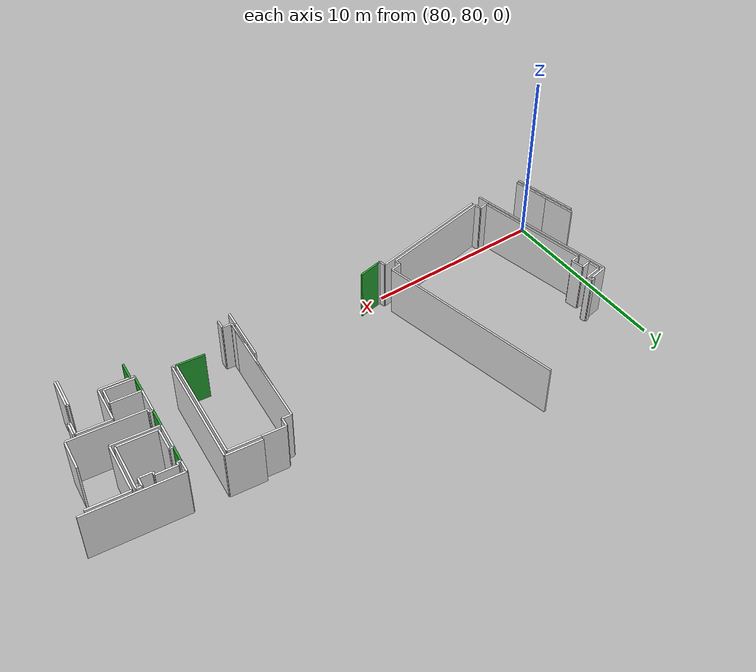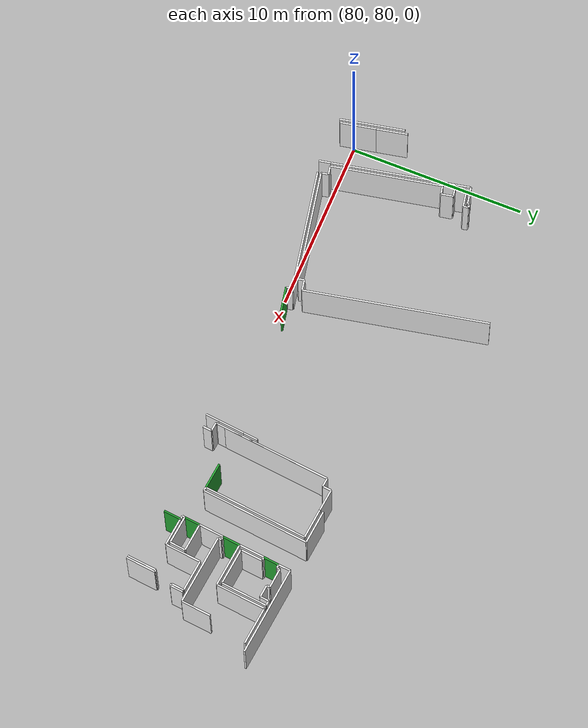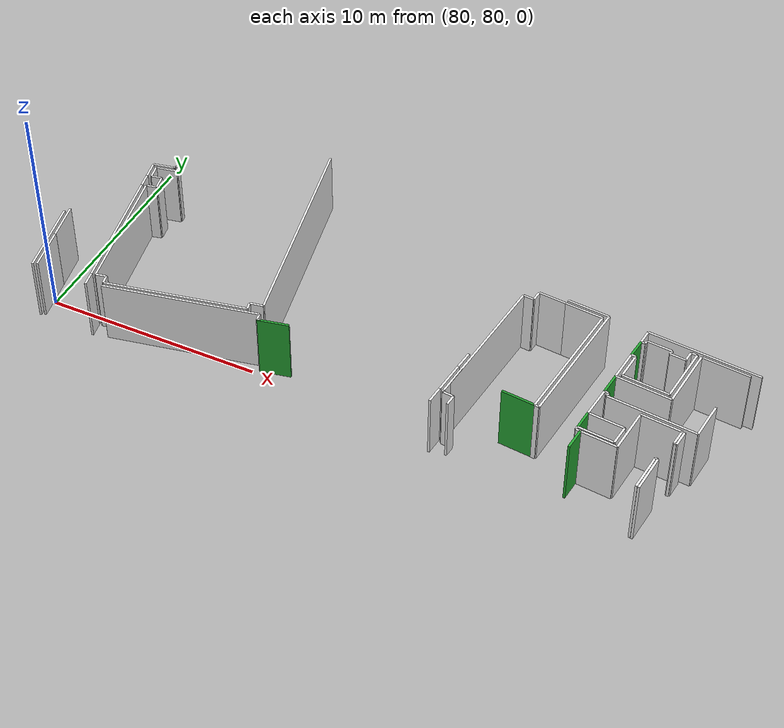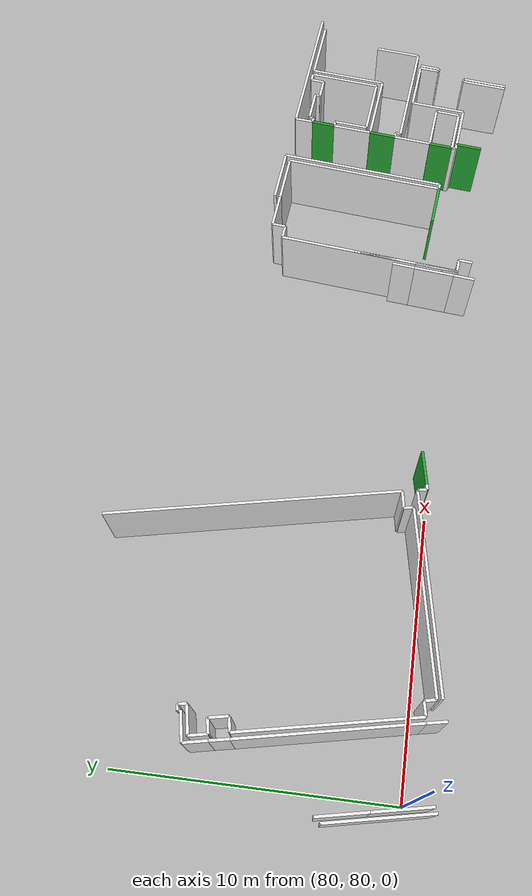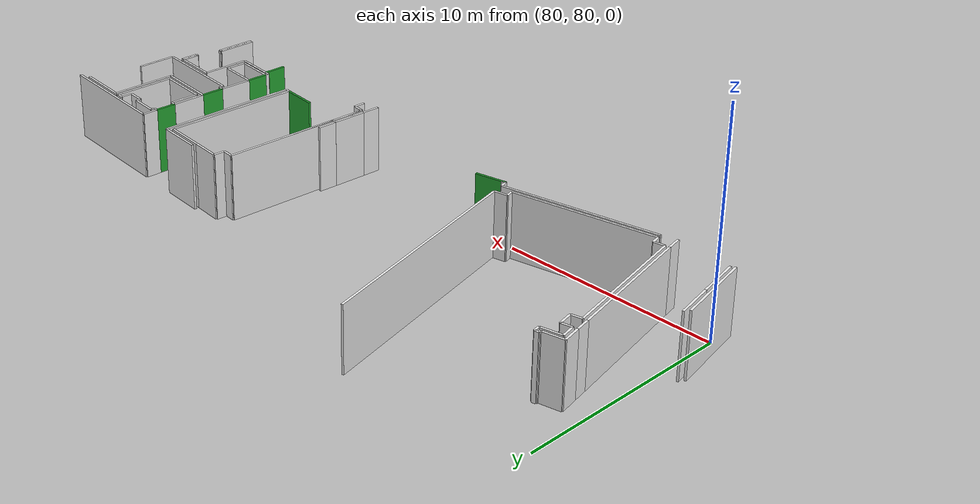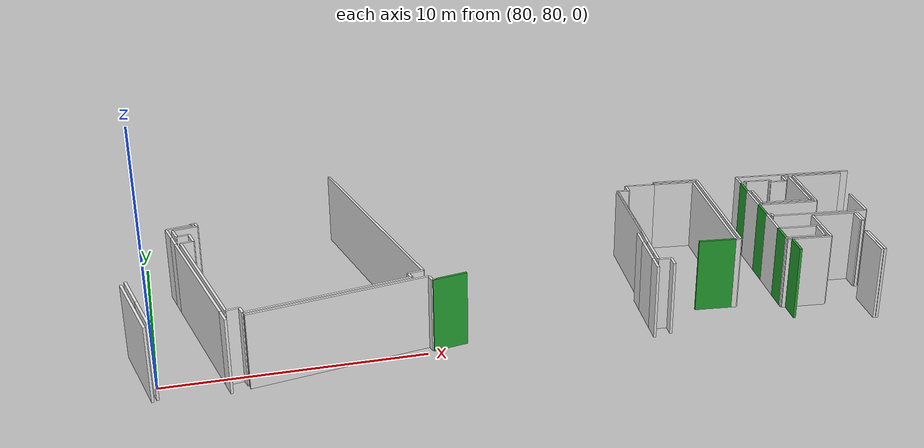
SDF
<sdf version="1.6">
 <world name="default">
  <model name="wall_104.7_79.7_1.5">
   <static>true</static>
   <pose>104.70999999999185 79.65999999991618 1.5 0 0 -1.6724851785951633</pose>
   <link name="link">
    <visual name="visual">
     <geometry><box><size>0.9850888284669952 0.1 3</size></box></geometry>
     <material>
      <script><uri>file://media/materials/scripts/gazebo.material</uri><name>Gazebo/Green</name></script>
     </material>
    </visual>
    <collision name="collision"><geometry><box><size>0.9850888284669952 0.1 3</size></box></geometry></collision>
   </link>
  </model>
  <model name="wall_104.9_83.1_1.5">
   <static>true</static>
   <pose>104.86999999999534 83.12999999988824 1.5 0 0 1.4711276743267871</pose>
   <link name="link">
    <visual name="visual">
     <geometry><box><size>1.0049875621097721 0.1 3</size></box></geometry>
     <material>
      <script><uri>file://media/materials/scripts/gazebo.material</uri><name>Gazebo/Green</name></script>
     </material>
    </visual>
    <collision name="collision"><geometry><box><size>1.0049875621097721 0.1 3</size></box></geometry></collision>
   </link>
  </model>
  <model name="wall_105.1_85.5_1.5">
   <static>true</static>
   <pose>105.10999999998603 85.53499999991618 1.5 0 0 1.4589060606653106</pose>
   <link name="link">
    <visual name="visual">
     <geometry><box><size>0.895600357429266 0.1 3</size></box></geometry>
     <material>
      <script><uri>file://media/materials/scripts/gazebo.material</uri><name>Gazebo/Green</name></script>
     </material>
    </visual>
    <collision name="collision"><geometry><box><size>0.895600357429266 0.1 3</size></box></geometry></collision>
   </link>
  </model>
  <model name="wall_101.9_80.8_1.5">
   <static>true</static>
   <pose>101.85499999986496 80.7750000001397 1.5 0 0 3.0412595494460013</pose>
   <link name="link">
    <visual name="visual">
     <geometry><box><size>1.4975313020562016 0.1 3</size></box></geometry>
     <material>
      <script><uri>file://media/materials/scripts/gazebo.material</uri><name>Gazebo/Green</name></script>
     </material>
    </visual>
    <collision name="collision"><geometry><box><size>1.4975313020562016 0.1 3</size></box></geometry></collision>
   </link>
  </model>
  <model name="wall_104.6_80.8_1.5">
   <static>true</static>
   <pose>104.625 80.77000000001863 1.5 0 0 -1.6704649792092168</pose>
   <link name="link">
    <visual name="visual">
     <geometry><box><size>0.904488806268317 0.1 3</size></box></geometry>
     <material>
      <script><uri>file://media/materials/scripts/gazebo.material</uri><name>Gazebo/Green</name></script>
     </material>
    </visual>
    <collision name="collision"><geometry><box><size>0.904488806268317 0.1 3</size></box></geometry></collision>
   </link>
  </model>
  <model name="wall_91.0_80.3_1.5">
   <static>true</static>
   <pose>90.9550000000745 80.3499999998603 1.5 0 0 0.2016031084932804</pose>
   <link name="link">
    <visual name="visual">
     <geometry><box><size>1.398320421145125 0.1 3</size></box></geometry>
     <material>
      <script><uri>file://media/materials/scripts/gazebo.material</uri><name>Gazebo/Green</name></script>
     </material>
    </visual>
    <collision name="collision"><geometry><box><size>1.398320421145125 0.1 3</size></box></geometry></collision>
   </link>
  </model>
  <model name="wall_108.4_81.5_1.5">
   <static>true</static>
   <pose>108.42999999999302 81.48999999999069 1.5 0 0 -1.6784861976067038</pose>
   <link name="link">
    <visual name="visual">
     <geometry><box><size>0.7443117623918901 0.1 3</size></box></geometry>
     <material>
      <script><uri>file://media/materials/scripts/gazebo.material</uri><name>Gazebo/White</name></script>
     </material>
    </visual>
    <collision name="collision"><geometry><box><size>0.7443117623918901 0.1 3</size></box></geometry></collision>
   </link>
  </model>
  <model name="wall_108.3_81.1_1.5">
   <static>true</static>
   <pose>108.33500000002095 81.125 1.5 0 0 3.0509327683929186</pose>
   <link name="link">
    <visual name="visual">
     <geometry><box><size>0.11045361013772383 0.1 3</size></box></geometry>
     <material>
      <script><uri>file://media/materials/scripts/gazebo.material</uri><name>Gazebo/White</name></script>
     </material>
    </visual>
    <collision name="collision"><geometry><box><size>0.11045361013772383 0.1 3</size></box></geometry></collision>
   </link>
  </model>
  <model name="wall_108.3_81.5_1.5">
   <static>true</static>
   <pose>108.32000000000698 81.5 1.5 0 0 1.463106456050333</pose>
   <link name="link">
    <visual name="visual">
     <geometry><box><size>0.7443117628548539 0.1 3</size></box></geometry>
     <material>
      <script><uri>file://media/materials/scripts/gazebo.material</uri><name>Gazebo/White</name></script>
     </material>
    </visual>
    <collision name="collision"><geometry><box><size>0.7443117628548539 0.1 3</size></box></geometry></collision>
   </link>
  </model>
  <model name="wall_107.5_82.0_1.5">
   <static>true</static>
   <pose>107.46499999999651 81.95999999996275 1.5 0 0 3.04137090397356</pose>
   <link name="link">
    <visual name="visual">
     <geometry><box><size>1.7990275150251853 0.1 3</size></box></geometry>
     <material>
      <script><uri>file://media/materials/scripts/gazebo.material</uri><name>Gazebo/White</name></script>
     </material>
    </visual>
    <collision name="collision"><geometry><box><size>1.7990275150251853 0.1 3</size></box></geometry></collision>
   </link>
  </model>
  <model name="wall_106.5_81.0_1.5">
   <static>true</static>
   <pose>106.46499999999651 81.02000000001863 1.5 0 0 -1.672387129760109</pose>
   <link name="link">
    <visual name="visual">
     <geometry><box><size>2.070676217644975 0.1 3</size></box></geometry>
     <material>
      <script><uri>file://media/materials/scripts/gazebo.material</uri><name>Gazebo/White</name></script>
     </material>
    </visual>
    <collision name="collision"><geometry><box><size>2.070676217644975 0.1 3</size></box></geometry></collision>
   </link>
  </model>
  <model name="wall_105.6_80.1_1.5">
   <static>true</static>
   <pose>105.55999999999767 80.07000000006519 1.5 0 0 3.041924001293137</pose>
   <link name="link">
    <visual name="visual">
     <geometry><box><size>1.6079800993246671 0.1 3</size></box></geometry>
     <material>
      <script><uri>file://media/materials/scripts/gazebo.material</uri><name>Gazebo/White</name></script>
     </material>
    </visual>
    <collision name="collision"><geometry><box><size>1.6079800993246671 0.1 3</size></box></geometry></collision>
   </link>
  </model>
  <model name="wall_107.8_79.2_1.5">
   <static>true</static>
   <pose>107.80499999999302 79.2249999998603 1.5 0 0 1.4705418512614783</pose>
   <link name="link">
    <visual name="visual">
     <geometry><box><size>1.6985287750948987 0.1 3</size></box></geometry>
     <material>
      <script><uri>file://media/materials/scripts/gazebo.material</uri><name>Gazebo/White</name></script>
     </material>
    </visual>
    <collision name="collision"><geometry><box><size>1.6985287750948987 0.1 3</size></box></geometry></collision>
   </link>
  </model>
  <model name="wall_107.9_80.1_1.5">
   <static>true</static>
   <pose>107.94500000000698 80.06499999994412 1.5 0 0 -0.09065988519687482</pose>
   <link name="link">
    <visual name="visual">
     <geometry><box><size>0.11045361013772383 0.1 3</size></box></geometry>
     <material>
      <script><uri>file://media/materials/scripts/gazebo.material</uri><name>Gazebo/White</name></script>
     </material>
    </visual>
    <collision name="collision"><geometry><box><size>0.11045361013772383 0.1 3</size></box></geometry></collision>
   </link>
  </model>
  <model name="wall_107.9_79.2_1.5">
   <static>true</static>
   <pose>107.91500000000815 79.20999999996275 1.5 0 0 -1.6704649792657182</pose>
   <link name="link">
    <visual name="visual">
     <geometry><box><size>1.7084788557742698 0.1 3</size></box></geometry>
     <material>
      <script><uri>file://media/materials/scripts/gazebo.material</uri><name>Gazebo/White</name></script>
     </material>
    </visual>
    <collision name="collision"><geometry><box><size>1.7084788557742698 0.1 3</size></box></geometry></collision>
   </link>
  </model>
  <model name="wall_108.8_86.1_1.5">
   <static>true</static>
   <pose>108.77499999999418 86.10000000009313 1.5 0 0 -0.10103726465713746</pose>
   <link name="link">
    <visual name="visual">
     <geometry><box><size>2.18112356362828 0.1 3</size></box></geometry>
     <material>
      <script><uri>file://media/materials/scripts/gazebo.material</uri><name>Gazebo/White</name></script>
     </material>
    </visual>
    <collision name="collision"><geometry><box><size>2.18112356362828 0.1 3</size></box></geometry></collision>
   </link>
  </model>
  <model name="wall_109.0_82.9_1.5">
   <static>true</static>
   <pose>109.0450000000128 82.86499999999069 1.5 0 0 -1.6710508022942177</pose>
   <link name="link">
    <visual name="visual">
     <geometry><box><size>1.698528775089073 0.1 3</size></box></geometry>
     <material>
      <script><uri>file://media/materials/scripts/gazebo.material</uri><name>Gazebo/White</name></script>
     </material>
    </visual>
    <collision name="collision"><geometry><box><size>1.698528775089073 0.1 3</size></box></geometry></collision>
   </link>
  </model>
  <model name="wall_107.0_82.2_1.5">
   <static>true</static>
   <pose>106.97500000000582 82.21999999997206 1.5 0 0 3.04117587158638</pose>
   <link name="link">
    <visual name="visual">
     <geometry><box><size>3.990100249387955 0.1 3</size></box></geometry>
     <material>
      <script><uri>file://media/materials/scripts/gazebo.material</uri><name>Gazebo/White</name></script>
     </material>
    </visual>
    <collision name="collision"><geometry><box><size>3.990100249387955 0.1 3</size></box></geometry></collision>
   </link>
  </model>
  <model name="wall_105.0_82.5_1.5">
   <static>true</static>
   <pose>105.0 82.51499999989755 1.5 0 0 1.4659193879370842</pose>
   <link name="link">
    <visual name="visual">
     <geometry><box><size>0.19104973169180559 0.1 3</size></box></geometry>
     <material>
      <script><uri>file://media/materials/scripts/gazebo.material</uri><name>Gazebo/White</name></script>
     </material>
    </visual>
    <collision name="collision"><geometry><box><size>0.19104973169180559 0.1 3</size></box></geometry></collision>
   </link>
  </model>
  <model name="wall_104.9_82.6_1.5">
   <static>true</static>
   <pose>104.91500000000815 82.61999999987893 1.5 0 0 3.0367157147638757</pose>
   <link name="link">
    <visual name="visual">
     <geometry><box><size>0.19104973174969345 0.1 3</size></box></geometry>
     <material>
      <script><uri>file://media/materials/scripts/gazebo.material</uri><name>Gazebo/White</name></script>
     </material>
    </visual>
    <collision name="collision"><geometry><box><size>0.19104973174969345 0.1 3</size></box></geometry></collision>
   </link>
  </model>
  <model name="wall_106.2_83.5_1.5">
   <static>true</static>
   <pose>106.16499999997905 83.5 1.5 0 0 -0.1040406436245778</pose>
   <link name="link">
    <visual name="visual">
     <geometry><box><size>2.5035374971902042 0.1 3</size></box></geometry>
     <material>
      <script><uri>file://media/materials/scripts/gazebo.material</uri><name>Gazebo/White</name></script>
     </material>
    </visual>
    <collision name="collision"><geometry><box><size>2.5035374971902042 0.1 3</size></box></geometry></collision>
   </link>
  </model>
  <model name="wall_107.5_84.8_1.5">
   <static>true</static>
   <pose>107.54999999998836 84.79000000003725 1.5 0 0 1.4725223735240212</pose>
   <link name="link">
    <visual name="visual">
     <geometry><box><size>2.853769436932364 0.1 3</size></box></geometry>
     <material>
      <script><uri>file://media/materials/scripts/gazebo.material</uri><name>Gazebo/White</name></script>
     </material>
    </visual>
    <collision name="collision"><geometry><box><size>2.853769436932364 0.1 3</size></box></geometry></collision>
   </link>
  </model>
  <model name="wall_105.3_86.0_1.5">
   <static>true</static>
   <pose>105.25499999997555 85.96999999997206 1.5 0 0 -0.10487693882591773</pose>
   <link name="link">
    <visual name="visual">
     <geometry><box><size>0.19104973174969345 0.1 3</size></box></geometry>
     <material>
      <script><uri>file://media/materials/scripts/gazebo.material</uri><name>Gazebo/White</name></script>
     </material>
    </visual>
    <collision name="collision"><geometry><box><size>0.19104973174969345 0.1 3</size></box></geometry></collision>
   </link>
  </model>
  <model name="wall_105.4_86.0_1.5">
   <static>true</static>
   <pose>105.35999999998603 86.0449999999255 1.5 0 0 1.4536875820691035</pose>
   <link name="link">
    <visual name="visual">
     <geometry><box><size>0.17117242761441775 0.1 3</size></box></geometry>
     <material>
      <script><uri>file://media/materials/scripts/gazebo.material</uri><name>Gazebo/White</name></script>
     </material>
    </visual>
    <collision name="collision"><geometry><box><size>0.17117242761441775 0.1 3</size></box></geometry></collision>
   </link>
  </model>
  <model name="wall_105.9_86.1_1.5">
   <static>true</static>
   <pose>105.92999999999302 86.07499999995343 1.5 0 0 -0.097900307623563</pose>
   <link name="link">
    <visual name="visual">
     <geometry><box><size>1.1253888216793715 0.1 3</size></box></geometry>
     <material>
      <script><uri>file://media/materials/scripts/gazebo.material</uri><name>Gazebo/White</name></script>
     </material>
    </visual>
    <collision name="collision"><geometry><box><size>1.1253888216793715 0.1 3</size></box></geometry></collision>
   </link>
  </model>
  <model name="wall_106.5_85.9_1.5">
   <static>true</static>
   <pose>106.47999999998137 85.92500000004657 1.5 0 0 -1.675673265652709</pose>
   <link name="link">
    <visual name="visual">
     <geometry><box><size>0.19104973169180559 0.1 3</size></box></geometry>
     <material>
      <script><uri>file://media/materials/scripts/gazebo.material</uri><name>Gazebo/White</name></script>
     </material>
    </visual>
    <collision name="collision"><geometry><box><size>0.19104973169180559 0.1 3</size></box></geometry></collision>
   </link>
  </model>
  <model name="wall_106.8_85.8_1.5">
   <static>true</static>
   <pose>106.81999999997788 85.7949999999255 1.5 0 0 -0.09966865291104755</pose>
   <link name="link">
    <visual name="visual">
     <geometry><box><size>0.7034912935197005 0.1 3</size></box></geometry>
     <material>
      <script><uri>file://media/materials/scripts/gazebo.material</uri><name>Gazebo/White</name></script>
     </material>
    </visual>
    <collision name="collision"><geometry><box><size>0.7034912935197005 0.1 3</size></box></geometry></collision>
   </link>
  </model>
  <model name="wall_107.2_86.0_1.5">
   <static>true</static>
   <pose>107.19499999997788 86.00999999977648 1.5 0 0 1.4711276743267871</pose>
   <link name="link">
    <visual name="visual">
     <geometry><box><size>0.5024937810548861 0.1 3</size></box></geometry>
     <material>
      <script><uri>file://media/materials/scripts/gazebo.material</uri><name>Gazebo/White</name></script>
     </material>
    </visual>
    <collision name="collision"><geometry><box><size>0.5024937810548861 0.1 3</size></box></geometry></collision>
   </link>
  </model>
  <model name="wall_107.4_86.2_1.5">
   <static>true</static>
   <pose>107.35999999998603 86.24499999987893 1.5 0 0 -0.10673567191511722</pose>
   <link name="link">
    <visual name="visual">
     <geometry><box><size>0.28160255681252744 0.1 3</size></box></geometry>
     <material>
      <script><uri>file://media/materials/scripts/gazebo.material</uri><name>Gazebo/White</name></script>
     </material>
    </visual>
    <collision name="collision"><geometry><box><size>0.28160255681252744 0.1 3</size></box></geometry></collision>
   </link>
  </model>
  <model name="wall_107.4_84.9_1.5">
   <static>true</static>
   <pose>107.36499999999069 84.90999999991618 1.5 0 0 -1.6727146942777542</pose>
   <link name="link">
    <visual name="visual">
     <geometry><box><size>2.6537709020747235 0.1 3</size></box></geometry>
     <material>
      <script><uri>file://media/materials/scripts/gazebo.material</uri><name>Gazebo/White</name></script>
     </material>
    </visual>
    <collision name="collision"><geometry><box><size>2.6537709020747235 0.1 3</size></box></geometry></collision>
   </link>
  </model>
  <model name="wall_106.2_83.7_1.5">
   <static>true</static>
   <pose>106.18499999999767 83.69499999983236 1.5 0 0 3.041450292007573</pose>
   <link name="link">
    <visual name="visual">
     <geometry><box><size>2.1005237441762237 0.1 3</size></box></geometry>
     <material>
      <script><uri>file://media/materials/scripts/gazebo.material</uri><name>Gazebo/White</name></script>
     </material>
    </visual>
    <collision name="collision"><geometry><box><size>2.1005237441762237 0.1 3</size></box></geometry></collision>
   </link>
  </model>
  <model name="wall_105.2_84.4_1.5">
   <static>true</static>
   <pose>105.20000000001164 84.43499999982305 1.5 0 0 1.4765878384548259</pose>
   <link name="link">
    <visual name="visual">
     <geometry><box><size>1.2756566936469207 0.1 3</size></box></geometry>
     <material>
      <script><uri>file://media/materials/scripts/gazebo.material</uri><name>Gazebo/White</name></script>
     </material>
    </visual>
    <collision name="collision"><geometry><box><size>1.2756566936469207 0.1 3</size></box></geometry></collision>
   </link>
  </model>
  <model name="wall_105.2_85.1_1.5">
   <static>true</static>
   <pose>105.16000000000349 85.07999999984168 1.5 0 0 3.0419240010121844</pose>
   <link name="link">
    <visual name="visual">
     <geometry><box><size>0.20099751243585498 0.1 3</size></box></geometry>
     <material>
      <script><uri>file://media/materials/scripts/gazebo.material</uri><name>Gazebo/White</name></script>
     </material>
    </visual>
    <collision name="collision"><geometry><box><size>0.20099751243585498 0.1 3</size></box></geometry></collision>
   </link>
  </model>
  <model name="wall_102.9_83.7_1.5">
   <static>true</static>
   <pose>102.90499999999884 83.67500000004657 1.5 0 0 1.4686322544173183</pose>
   <link name="link">
    <visual name="visual">
     <geometry><box><size>5.98118717285533 0.1 3</size></box></geometry>
     <material>
      <script><uri>file://media/materials/scripts/gazebo.material</uri><name>Gazebo/White</name></script>
     </material>
    </visual>
    <collision name="collision"><geometry><box><size>5.98118717285533 0.1 3</size></box></geometry></collision>
   </link>
  </model>
  <model name="wall_102.4_86.7_1.5">
   <static>true</static>
   <pose>102.35000000000582 86.73499999986961 1.5 0 0 3.0430754111122615</pose>
   <link name="link">
    <visual name="visual">
     <geometry><box><size>1.728380745113411 0.1 3</size></box></geometry>
     <material>
      <script><uri>file://media/materials/scripts/gazebo.material</uri><name>Gazebo/White</name></script>
     </material>
    </visual>
    <collision name="collision"><geometry><box><size>1.728380745113411 0.1 3</size></box></geometry></collision>
   </link>
  </model>
  <model name="wall_100.9_86.9_1.5">
   <static>true</static>
   <pose>100.85999999998603 86.88500000000931 1.5 0 0 3.038781827344916</pose>
   <link name="link">
    <visual name="visual">
     <geometry><box><size>1.2666885963469807 0.1 3</size></box></geometry>
     <material>
      <script><uri>file://media/materials/scripts/gazebo.material</uri><name>Gazebo/White</name></script>
     </material>
    </visual>
    <collision name="collision"><geometry><box><size>1.2666885963469807 0.1 3</size></box></geometry></collision>
   </link>
  </model>
  <model name="wall_100.2_86.7_1.5">
   <static>true</static>
   <pose>100.2049999999872 86.70000000018626 1.5 0 0 -1.6704649792630062</pose>
   <link name="link">
    <visual name="visual">
     <geometry><box><size>0.5024937810548861 0.1 3</size></box></geometry>
     <material>
      <script><uri>file://media/materials/scripts/gazebo.material</uri><name>Gazebo/White</name></script>
     </material>
    </visual>
    <collision name="collision"><geometry><box><size>0.5024937810548861 0.1 3</size></box></geometry></collision>
   </link>
  </model>
  <model name="wall_99.9_86.5_1.5">
   <static>true</static>
   <pose>99.93499999999767 86.47500000009313 1.5 0 0 3.039903802201011</pose>
   <link name="link">
    <visual name="visual">
     <geometry><box><size>0.49254441421281653 0.1 3</size></box></geometry>
     <material>
      <script><uri>file://media/materials/scripts/gazebo.material</uri><name>Gazebo/White</name></script>
     </material>
    </visual>
    <collision name="collision"><geometry><box><size>0.49254441421281653 0.1 3</size></box></geometry></collision>
   </link>
  </model>
  <model name="wall_99.4_83.9_1.5">
   <static>true</static>
   <pose>99.42499999998836 83.9199999999255 1.5 0 0 -1.6731505665400097</pose>
   <link name="link">
    <visual name="visual">
     <geometry><box><size>5.187147578541352 0.1 3</size></box></geometry>
     <material>
      <script><uri>file://media/materials/scripts/gazebo.material</uri><name>Gazebo/White</name></script>
     </material>
    </visual>
    <collision name="collision"><geometry><box><size>5.187147578541352 0.1 3</size></box></geometry></collision>
   </link>
  </model>
  <model name="wall_99.1_80.6_1.5">
   <static>true</static>
   <pose>99.08499999999185 80.59499999997206 1.5 0 0 -1.671129431008509</pose>
   <link name="link">
    <visual name="visual">
     <geometry><box><size>1.4975313015987124 0.1 3</size></box></geometry>
     <material>
      <script><uri>file://media/materials/scripts/gazebo.material</uri><name>Gazebo/White</name></script>
     </material>
    </visual>
    <collision name="collision"><geometry><box><size>1.4975313015987124 0.1 3</size></box></geometry></collision>
   </link>
  </model>
  <model name="wall_99.0_79.8_1.5">
   <static>true</static>
   <pose>99.00500000000466 79.80499999993481 1.5 0 0 -1.6814535476848524</pose>
   <link name="link">
    <visual name="visual">
     <geometry><box><size>0.0905538516971156 0.1 3</size></box></geometry>
     <material>
      <script><uri>file://media/materials/scripts/gazebo.material</uri><name>Gazebo/White</name></script>
     </material>
    </visual>
    <collision name="collision"><geometry><box><size>0.0905538516971156 0.1 3</size></box></geometry></collision>
   </link>
  </model>
  <model name="wall_99.2_79.7_1.5">
   <static>true</static>
   <pose>99.25 79.73499999986961 1.5 0 0 -0.0996686521223214</pose>
   <link name="link">
    <visual name="visual">
     <geometry><box><size>0.5024937810375105 0.1 3</size></box></geometry>
     <material>
      <script><uri>file://media/materials/scripts/gazebo.material</uri><name>Gazebo/White</name></script>
     </material>
    </visual>
    <collision name="collision"><geometry><box><size>0.5024937810375105 0.1 3</size></box></geometry></collision>
   </link>
  </model>
  <model name="wall_99.5_79.5_1.5">
   <static>true</static>
   <pose>99.47500000000582 79.45999999996275 1.5 0 0 -1.6704649792630062</pose>
   <link name="link">
    <visual name="visual">
     <geometry><box><size>0.5024937810548861 0.1 3</size></box></geometry>
     <material>
      <script><uri>file://media/materials/scripts/gazebo.material</uri><name>Gazebo/White</name></script>
     </material>
    </visual>
    <collision name="collision"><geometry><box><size>0.5024937810548861 0.1 3</size></box></geometry></collision>
   </link>
  </model>
  <model name="wall_102.7_80.7_1.5">
   <static>true</static>
   <pose>102.69999999998254 80.68500000005588 1.5 0 0 -0.14888994887611873</pose>
   <link name="link">
    <visual name="visual">
     <geometry><box><size>0.20223748421176238 0.1 3</size></box></geometry>
     <material>
      <script><uri>file://media/materials/scripts/gazebo.material</uri><name>Gazebo/White</name></script>
     </material>
    </visual>
    <collision name="collision"><geometry><box><size>0.20223748421176238 0.1 3</size></box></geometry></collision>
   </link>
  </model>
  <model name="wall_103.1_83.8_1.5">
   <static>true</static>
   <pose>103.11499999999069 83.75499999988824 1.5 0 0 1.4690420042953642</pose>
   <link name="link">
    <visual name="visual">
     <geometry><box><size>6.202080296085054 0.1 3</size></box></geometry>
     <material>
      <script><uri>file://media/materials/scripts/gazebo.material</uri><name>Gazebo/White</name></script>
     </material>
    </visual>
    <collision name="collision"><geometry><box><size>6.202080296085054 0.1 3</size></box></geometry></collision>
   </link>
  </model>
  <model name="wall_102.5_86.9_1.5">
   <static>true</static>
   <pose>102.47000000000116 86.93499999982305 1.5 0 0 3.0429554602760422</pose>
   <link name="link">
    <visual name="visual">
     <geometry><box><size>1.929378138135752 0.1 3</size></box></geometry>
     <material>
      <script><uri>file://media/materials/scripts/gazebo.material</uri><name>Gazebo/White</name></script>
     </material>
    </visual>
    <collision name="collision"><geometry><box><size>1.929378138135752 0.1 3</size></box></geometry></collision>
   </link>
  </model>
  <model name="wall_107.8_86.4_1.5">
   <static>true</static>
   <pose>107.75 86.40500000002794 1.5 0 0 3.041141375502892</pose>
   <link name="link">
    <visual name="visual">
     <geometry><box><size>5.08563663672627 0.1 3</size></box></geometry>
     <material>
      <script><uri>file://media/materials/scripts/gazebo.material</uri><name>Gazebo/White</name></script>
     </material>
    </visual>
    <collision name="collision"><geometry><box><size>5.08563663672627 0.1 3</size></box></geometry></collision>
   </link>
  </model>
  <model name="wall_105.2_86.3_1.5">
   <static>true</static>
   <pose>105.18999999997322 86.32000000006519 1.5 0 0 -1.6588037002976554</pose>
   <link name="link">
    <visual name="visual">
     <geometry><box><size>0.6826419268018251 0.1 3</size></box></geometry>
     <material>
      <script><uri>file://media/materials/scripts/gazebo.material</uri><name>Gazebo/White</name></script>
     </material>
    </visual>
    <collision name="collision"><geometry><box><size>0.6826419268018251 0.1 3</size></box></geometry></collision>
   </link>
  </model>
  <model name="wall_105.0_84.4_1.5">
   <static>true</static>
   <pose>104.98999999999069 84.35999999986961 1.5 0 0 -1.6663944454706425</pose>
   <link name="link">
    <visual name="visual">
     <geometry><box><size>1.466696969348179 0.1 3</size></box></geometry>
     <material>
      <script><uri>file://media/materials/scripts/gazebo.material</uri><name>Gazebo/White</name></script>
     </material>
    </visual>
    <collision name="collision"><geometry><box><size>1.466696969348179 0.1 3</size></box></geometry></collision>
   </link>
  </model>
  <model name="wall_104.7_81.9_1.5">
   <static>true</static>
   <pose>104.74499999999534 81.92500000004657 1.5 0 0 -1.676780684824448</pose>
   <link name="link">
    <visual name="visual">
     <geometry><box><size>1.417956275459167 0.1 3</size></box></geometry>
     <material>
      <script><uri>file://media/materials/scripts/gazebo.material</uri><name>Gazebo/White</name></script>
     </material>
    </visual>
    <collision name="collision"><geometry><box><size>1.417956275459167 0.1 3</size></box></geometry></collision>
   </link>
  </model>
  <model name="wall_104.6_80.2_1.5">
   <static>true</static>
   <pose>104.57000000000698 80.24499999987893 1.5 0 0 -1.7033478592949163</pose>
   <link name="link">
    <visual name="visual">
     <geometry><box><size>0.15132745941436201 0.1 3</size></box></geometry>
     <material>
      <script><uri>file://media/materials/scripts/gazebo.material</uri><name>Gazebo/White</name></script>
     </material>
    </visual>
    <collision name="collision"><geometry><box><size>0.15132745941436201 0.1 3</size></box></geometry></collision>
   </link>
  </model>
  <model name="wall_104.7_80.2_1.5">
   <static>true</static>
   <pose>104.66000000000349 80.15999999991618 1.5 0 0 -0.09966865257760905</pose>
   <link name="link">
    <visual name="visual">
     <geometry><box><size>0.20099751243585498 0.1 3</size></box></geometry>
     <material>
      <script><uri>file://media/materials/scripts/gazebo.material</uri><name>Gazebo/White</name></script>
     </material>
    </visual>
    <collision name="collision"><geometry><box><size>0.20099751243585498 0.1 3</size></box></geometry></collision>
   </link>
  </model>
  <model name="wall_105.5_81.1_1.5">
   <static>true</static>
   <pose>105.47000000000116 81.14000000013039 1.5 0 0 -0.099668652581211</pose>
   <link name="link">
    <visual name="visual">
     <geometry><box><size>1.607980099428921 0.1 3</size></box></geometry>
     <material>
      <script><uri>file://media/materials/scripts/gazebo.material</uri><name>Gazebo/White</name></script>
     </material>
    </visual>
    <collision name="collision"><geometry><box><size>1.607980099428921 0.1 3</size></box></geometry></collision>
   </link>
  </model>
  <model name="wall_106.2_80.6_1.5">
   <static>true</static>
   <pose>106.22000000000116 80.61000000010245 1.5 0 0 -1.6814535480184818</pose>
   <link name="link">
    <visual name="visual">
     <geometry><box><size>0.9055385137250358 0.1 3</size></box></geometry>
     <material>
      <script><uri>file://media/materials/scripts/gazebo.material</uri><name>Gazebo/White</name></script>
     </material>
    </visual>
    <collision name="collision"><geometry><box><size>0.9055385137250358 0.1 3</size></box></geometry></collision>
   </link>
  </model>
  <model name="wall_105.4_80.2_1.5">
   <static>true</static>
   <pose>105.375 80.23999999999069 1.5 0 0 3.041301336367988</pose>
   <link name="link">
    <visual name="visual">
     <geometry><box><size>1.598030037200495 0.1 3</size></box></geometry>
     <material>
      <script><uri>file://media/materials/scripts/gazebo.material</uri><name>Gazebo/White</name></script>
     </material>
    </visual>
    <collision name="collision"><geometry><box><size>1.598030037200495 0.1 3</size></box></geometry></collision>
   </link>
  </model>
  <model name="wall_79.5_80.9_1.5">
   <static>true</static>
   <pose>79.46499999999651 80.88500000000931 1.5 0 0 1.7703218088940849</pose>
   <link name="link">
    <visual name="visual">
     <geometry><box><size>3.683069372020626 0.1 3</size></box></geometry>
     <material>
      <script><uri>file://media/materials/scripts/gazebo.material</uri><name>Gazebo/White</name></script>
     </material>
    </visual>
    <collision name="collision"><geometry><box><size>3.683069372020626 0.1 3</size></box></geometry></collision>
   </link>
  </model>
  <model name="wall_79.8_80.2_1.5">
   <static>true</static>
   <pose>79.80999999999767 80.17500000004657 1.5 0 0 1.7672349491259145</pose>
   <link name="link">
    <visual name="visual">
     <geometry><box><size>2.0494145507905532 0.1 3</size></box></geometry>
     <material>
      <script><uri>file://media/materials/scripts/gazebo.material</uri><name>Gazebo/White</name></script>
     </material>
    </visual>
    <collision name="collision"><geometry><box><size>2.0494145507905532 0.1 3</size></box></geometry></collision>
   </link>
  </model>
  <model name="wall_79.4_82.1_1.5">
   <static>true</static>
   <pose>79.43499999999767 82.05000000004657 1.5 0 0 1.7692968585848012</pose>
   <link name="link">
    <visual name="visual">
     <geometry><box><size>1.7748521062728133 0.1 3</size></box></geometry>
     <material>
      <script><uri>file://media/materials/scripts/gazebo.material</uri><name>Gazebo/White</name></script>
     </material>
    </visual>
    <collision name="collision"><geometry><box><size>1.7748521062728133 0.1 3</size></box></geometry></collision>
   </link>
  </model>
  <model name="wall_82.0_87.6_1.5">
   <static>true</static>
   <pose>81.99500000002445 87.63500000000931 1.5 0 0 -2.9849907776618085</pose>
   <link name="link">
    <visual name="visual">
     <geometry><box><size>0.19235384058705793 0.1 3</size></box></geometry>
     <material>
      <script><uri>file://media/materials/scripts/gazebo.material</uri><name>Gazebo/White</name></script>
     </material>
    </visual>
    <collision name="collision"><geometry><box><size>0.19235384058705793 0.1 3</size></box></geometry></collision>
   </link>
  </model>
  <model name="wall_81.9_87.6_1.5">
   <static>true</static>
   <pose>81.91000000000349 87.57000000006519 1.5 0 0 -1.3734007675047049</pose>
   <link name="link">
    <visual name="visual">
     <geometry><box><size>0.10198039035541688 0.1 3</size></box></geometry>
     <material>
      <script><uri>file://media/materials/scripts/gazebo.material</uri><name>Gazebo/White</name></script>
     </material>
    </visual>
    <collision name="collision"><geometry><box><size>0.10198039035541688 0.1 3</size></box></geometry></collision>
   </link>
  </model>
  <model name="wall_81.4_87.4_1.5">
   <static>true</static>
   <pose>81.42499999998836 87.42500000004657 1.5 0 0 -2.9519790378681012</pose>
   <link name="link">
    <visual name="visual">
     <geometry><box><size>1.0080674580405449 0.1 3</size></box></geometry>
     <material>
      <script><uri>file://media/materials/scripts/gazebo.material</uri><name>Gazebo/White</name></script>
     </material>
    </visual>
    <collision name="collision"><geometry><box><size>1.0080674580405449 0.1 3</size></box></geometry></collision>
   </link>
  </model>
  <model name="wall_81.0_86.9_1.5">
   <static>true</static>
   <pose>81.01499999998487 86.91000000014901 1.5 0 0 -1.3711124414039455</pose>
   <link name="link">
    <visual name="visual">
     <geometry><box><size>0.8570297542933495 0.1 3</size></box></geometry>
     <material>
      <script><uri>file://media/materials/scripts/gazebo.material</uri><name>Gazebo/White</name></script>
     </material>
    </visual>
    <collision name="collision"><geometry><box><size>0.8570297542933495 0.1 3</size></box></geometry></collision>
   </link>
  </model>
  <model name="wall_81.2_86.2_1.5">
   <static>true</static>
   <pose>81.16499999997905 86.1500000001397 1.5 0 0 -1.3818991459561358</pose>
   <link name="link">
    <visual name="visual">
     <geometry><box><size>0.6923149573923696 0.1 3</size></box></geometry>
     <material>
      <script><uri>file://media/materials/scripts/gazebo.material</uri><name>Gazebo/White</name></script>
     </material>
    </visual>
    <collision name="collision"><geometry><box><size>0.6923149573923696 0.1 3</size></box></geometry></collision>
   </link>
  </model>
  <model name="wall_81.8_82.7_1.5">
   <static>true</static>
   <pose>81.84999999997672 82.72999999998137 1.5 0 0 -1.3721523281490677</pose>
   <link name="link">
    <visual name="visual">
     <geometry><box><size>6.283565866752152 0.1 3</size></box></geometry>
     <material>
      <script><uri>file://media/materials/scripts/gazebo.material</uri><name>Gazebo/White</name></script>
     </material>
    </visual>
    <collision name="collision"><geometry><box><size>6.283565866752152 0.1 3</size></box></geometry></collision>
   </link>
  </model>
  <model name="wall_82.5_79.3_1.5">
   <static>true</static>
   <pose>82.53499999997439 79.31000000005588 1.5 0 0 -1.3818991458298349</pose>
   <link name="link">
    <visual name="visual">
     <geometry><box><size>0.6923149569349915 0.1 3</size></box></geometry>
     <material>
      <script><uri>file://media/materials/scripts/gazebo.material</uri><name>Gazebo/White</name></script>
     </material>
    </visual>
    <collision name="collision"><geometry><box><size>0.6923149569349915 0.1 3</size></box></geometry></collision>
   </link>
  </model>
  <model name="wall_99.0_81.8_1.5">
   <static>true</static>
   <pose>99.01499999998487 81.78000000002794 1.5 0 0 -1.6775319994342452</pose>
   <link name="link">
    <visual name="visual">
     <geometry><box><size>0.8448076707372996 0.1 3</size></box></geometry>
     <material>
      <script><uri>file://media/materials/scripts/gazebo.material</uri><name>Gazebo/White</name></script>
     </material>
    </visual>
    <collision name="collision"><geometry><box><size>0.8448076707372996 0.1 3</size></box></geometry></collision>
   </link>
  </model>
  <model name="wall_98.9_80.6_1.5">
   <static>true</static>
   <pose>98.89499999998952 80.61499999999069 1.5 0 0 -1.671129431008509</pose>
   <link name="link">
    <visual name="visual">
     <geometry><box><size>1.4975313015987124 0.1 3</size></box></geometry>
     <material>
      <script><uri>file://media/materials/scripts/gazebo.material</uri><name>Gazebo/White</name></script>
     </material>
    </visual>
    <collision name="collision"><geometry><box><size>1.4975313015987124 0.1 3</size></box></geometry></collision>
   </link>
  </model>
  <model name="wall_98.8_79.5_1.5">
   <static>true</static>
   <pose>98.77999999999884 79.47500000009313 1.5 0 0 -1.6717181114778847</pose>
   <link name="link">
    <visual name="visual">
     <geometry><box><size>0.794040301282918 0.1 3</size></box></geometry>
     <material>
      <script><uri>file://media/materials/scripts/gazebo.material</uri><name>Gazebo/White</name></script>
     </material>
    </visual>
    <collision name="collision"><geometry><box><size>0.794040301282918 0.1 3</size></box></geometry></collision>
   </link>
  </model>
  <model name="wall_90.4_80.2_1.5">
   <static>true</static>
   <pose>90.36500000001979 80.22999999998137 1.5 0 0 0.20749622662047904</pose>
   <link name="link">
    <visual name="visual">
     <geometry><box><size>0.19416487839942884 0.1 3</size></box></geometry>
     <material>
      <script><uri>file://media/materials/scripts/gazebo.material</uri><name>Gazebo/White</name></script>
     </material>
    </visual>
    <collision name="collision"><geometry><box><size>0.19416487839942884 0.1 3</size></box></geometry></collision>
   </link>
  </model>
  <model name="wall_90.2_80.4_1.5">
   <static>true</static>
   <pose>90.23500000001513 80.37999999988824 1.5 0 0 -1.3677511094351602</pose>
   <link name="link">
    <visual name="visual">
     <geometry><box><size>0.34713109900965367 0.1 3</size></box></geometry>
     <material>
      <script><uri>file://media/materials/scripts/gazebo.material</uri><name>Gazebo/White</name></script>
     </material>
    </visual>
    <collision name="collision"><geometry><box><size>0.34713109900965367 0.1 3</size></box></geometry></collision>
   </link>
  </model>
  <model name="wall_86.7_79.9_1.5">
   <static>true</static>
   <pose>86.73500000001513 79.86499999999069 1.5 0 0 0.1951745751129922</pose>
   <link name="link">
    <visual name="visual">
     <geometry><box><size>7.064120610446391 0.1 3</size></box></geometry>
     <material>
      <script><uri>file://media/materials/scripts/gazebo.material</uri><name>Gazebo/White</name></script>
     </material>
    </visual>
    <collision name="collision"><geometry><box><size>7.064120610446391 0.1 3</size></box></geometry></collision>
   </link>
  </model>
  <model name="wall_89.1_86.2_1.5">
   <static>true</static>
   <pose>89.07499999998254 86.17500000004657 1.5 0 0 1.7693239616328174</pose>
   <link name="link">
    <visual name="visual">
     <geometry><box><size>10.394161822812528 0.1 3</size></box></geometry>
     <material>
      <script><uri>file://media/materials/scripts/gazebo.material</uri><name>Gazebo/White</name></script>
     </material>
    </visual>
    <collision name="collision"><geometry><box><size>10.394161822812528 0.1 3</size></box></geometry></collision>
   </link>
  </model>
  <model name="wall_82.1_87.5_1.5">
   <static>true</static>
   <pose>82.12000000002445 87.50499999988824 1.5 0 0 -1.3667783472355337</pose>
   <link name="link">
    <visual name="visual">
     <geometry><box><size>0.2961418579352255 0.1 3</size></box></geometry>
     <material>
      <script><uri>file://media/materials/scripts/gazebo.material</uri><name>Gazebo/White</name></script>
     </material>
    </visual>
    <collision name="collision"><geometry><box><size>0.2961418579352255 0.1 3</size></box></geometry></collision>
   </link>
  </model>
  <model name="wall_81.7_87.3_1.5">
   <static>true</static>
   <pose>81.66000000000349 87.26499999989755 1.5 0 0 -2.950090935182675</pose>
   <link name="link">
    <visual name="visual">
     <geometry><box><size>0.9982484660926583 0.1 3</size></box></geometry>
     <material>
      <script><uri>file://media/materials/scripts/gazebo.material</uri><name>Gazebo/White</name></script>
     </material>
    </visual>
    <collision name="collision"><geometry><box><size>0.9982484660926583 0.1 3</size></box></geometry></collision>
   </link>
  </model>
  <model name="wall_81.2_86.8_1.5">
   <static>true</static>
   <pose>81.23499999998603 86.8499999998603 1.5 0 0 -1.3703977730017727</pose>
   <link name="link">
    <visual name="visual">
     <geometry><box><size>0.6530696748189306 0.1 3</size></box></geometry>
     <material>
      <script><uri>file://media/materials/scripts/gazebo.material</uri><name>Gazebo/White</name></script>
     </material>
    </visual>
    <collision name="collision"><geometry><box><size>0.6530696748189306 0.1 3</size></box></geometry></collision>
   </link>
  </model>
  <model name="wall_81.5_86.6_1.5">
   <static>true</static>
   <pose>81.5449999999837 86.57999999984168 1.5 0 0 0.2013171085608308</pose>
   <link name="link">
    <visual name="visual">
     <geometry><box><size>0.5000999900114971 0.1 3</size></box></geometry>
     <material>
      <script><uri>file://media/materials/scripts/gazebo.material</uri><name>Gazebo/White</name></script>
     </material>
    </visual>
    <collision name="collision"><geometry><box><size>0.5000999900114971 0.1 3</size></box></geometry></collision>
   </link>
  </model>
  <model name="wall_81.9_86.3_1.5">
   <static>true</static>
   <pose>81.85499999998137 86.29000000003725 1.5 0 0 -1.3818991458298349</pose>
   <link name="link">
    <visual name="visual">
     <geometry><box><size>0.6923149569349915 0.1 3</size></box></geometry>
     <material>
      <script><uri>file://media/materials/scripts/gazebo.material</uri><name>Gazebo/White</name></script>
     </material>
    </visual>
    <collision name="collision"><geometry><box><size>0.6923149569349915 0.1 3</size></box></geometry></collision>
   </link>
  </model>
  <model name="wall_81.7_85.9_1.5">
   <static>true</static>
   <pose>81.67499999998836 85.9000000001397 1.5 0 0 -2.9402755450289626</pose>
   <link name="link">
    <visual name="visual">
     <geometry><box><size>0.5000999900114971 0.1 3</size></box></geometry>
     <material>
      <script><uri>file://media/materials/scripts/gazebo.material</uri><name>Gazebo/White</name></script>
     </material>
    </visual>
    <collision name="collision"><geometry><box><size>0.5000999900114971 0.1 3</size></box></geometry></collision>
   </link>
  </model>
  <model name="wall_82.0_82.8_1.5">
   <static>true</static>
   <pose>82.0449999999837 82.76500000013039 1.5 0 0 -1.3740242082613399</pose>
   <link name="link">
    <visual name="visual">
     <geometry><box><size>6.291406837825287 0.1 3</size></box></geometry>
     <material>
      <script><uri>file://media/materials/scripts/gazebo.material</uri><name>Gazebo/White</name></script>
     </material>
    </visual>
    <collision name="collision"><geometry><box><size>6.291406837825287 0.1 3</size></box></geometry></collision>
   </link>
  </model>
  <model name="wall_82.9_79.7_1.5">
   <static>true</static>
   <pose>82.90499999999884 79.72999999998137 1.5 0 0 0.20131710762522587</pose>
   <link name="link">
    <visual name="visual">
     <geometry><box><size>0.5000999899754156 0.1 3</size></box></geometry>
     <material>
      <script><uri>file://media/materials/scripts/gazebo.material</uri><name>Gazebo/White</name></script>
     </material>
    </visual>
    <collision name="collision"><geometry><box><size>0.5000999899754156 0.1 3</size></box></geometry></collision>
   </link>
  </model>
  <model name="wall_83.2_79.6_1.5">
   <static>true</static>
   <pose>83.19500000000698 79.57499999995343 1.5 0 0 -1.3547113544122191</pose>
   <link name="link">
    <visual name="visual">
     <geometry><box><size>0.41976183692003244 0.1 3</size></box></geometry>
     <material>
      <script><uri>file://media/materials/scripts/gazebo.material</uri><name>Gazebo/White</name></script>
     </material>
    </visual>
    <collision name="collision"><geometry><box><size>0.41976183692003244 0.1 3</size></box></geometry></collision>
   </link>
  </model>
  <model name="wall_86.4_80.0_1.5">
   <static>true</static>
   <pose>86.40499999999884 80.0 1.5 0 0 0.19648398303966225</pose>
   <link name="link">
    <visual name="visual">
     <geometry><box><size>6.454184688993883 0.1 3</size></box></geometry>
     <material>
      <script><uri>file://media/materials/scripts/gazebo.material</uri><name>Gazebo/White</name></script>
     </material>
    </visual>
    <collision name="collision"><geometry><box><size>6.454184688993883 0.1 3</size></box></geometry></collision>
   </link>
  </model>
  <model name="wall_89.5_80.8_1.5">
   <static>true</static>
   <pose>89.53500000000349 80.80000000004657 1.5 0 0 1.7738415438841244</pose>
   <link name="link">
    <visual name="visual">
     <geometry><box><size>0.34713109946574894 0.1 3</size></box></geometry>
     <material>
      <script><uri>file://media/materials/scripts/gazebo.material</uri><name>Gazebo/White</name></script>
     </material>
    </visual>
    <collision name="collision"><geometry><box><size>0.34713109946574894 0.1 3</size></box></geometry></collision>
   </link>
  </model>
  <model name="wall_89.8_81.0_1.5">
   <static>true</static>
   <pose>89.79999999998836 81.0250000001397 1.5 0 0 0.18131977419813103</pose>
   <link name="link">
    <visual name="visual">
     <geometry><box><size>0.6099999999535866 0.1 3</size></box></geometry>
     <material>
      <script><uri>file://media/materials/scripts/gazebo.material</uri><name>Gazebo/White</name></script>
     </material>
    </visual>
    <collision name="collision"><geometry><box><size>0.6099999999535866 0.1 3</size></box></geometry></collision>
   </link>
  </model>
  <model name="wall_99.3_83.1_1.5">
   <static>true</static>
   <pose>99.34500000000116 83.12999999988824 1.5 0 0 1.4687778475258746</pose>
   <link name="link">
    <visual name="visual">
     <geometry><box><size>6.775226933691315 0.1 3</size></box></geometry>
     <material>
      <script><uri>file://media/materials/scripts/gazebo.material</uri><name>Gazebo/White</name></script>
     </material>
    </visual>
    <collision name="collision"><geometry><box><size>6.775226933691315 0.1 3</size></box></geometry></collision>
   </link>
  </model>
 </world>
</sdf>
